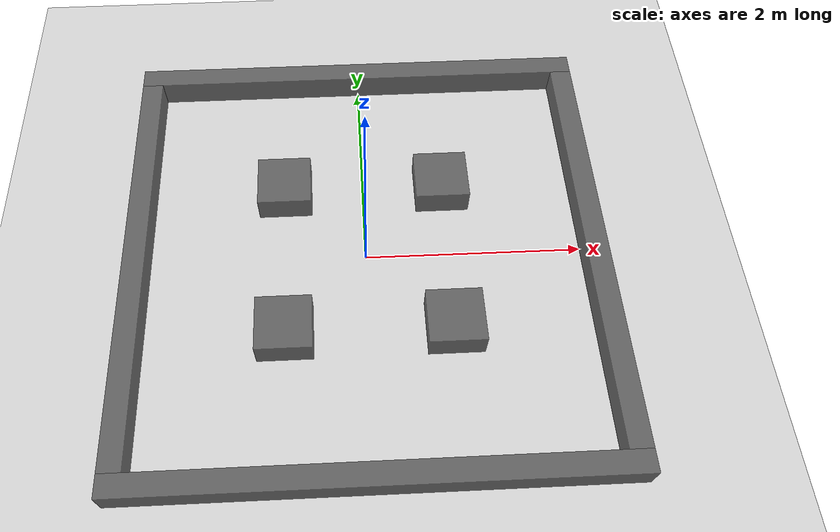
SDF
<?xml version="1.0" ?>
<sdf version="1.6">
  <world name="minimal_world">
    <include>
      <uri>model://ground_plane</uri>
    </include>
    <include>
      <uri>model://sun</uri>
    </include>

    <!-- Back Wall -->
    <model name="back_wall">
      <static>true</static>
      <pose>0 2.1 0 0 0 0</pose>
      <link name="back_wall">
        <collision name="collision">
          <geometry>
            <box>
              <size>4.4 0.2 0.5</size>
            </box>
          </geometry>
        </collision>
        <visual name="visual">
          <geometry>
            <box>
              <size>4.4 0.2 0.5</size>
            </box>
          </geometry>
          <material>
            <ambient>0.3 0.3 0.3 0.5</ambient>
            <diffuse>0.3 0.3 0.3 0.8</diffuse>
          </material>
        </visual>
      </link>
    </model>

    <!-- Front Wall -->
    <model name="front_wall">
      <static>true</static>
      <pose>0 -2.1 0 0 0 0</pose>
      <link name="front_wall">
        <collision name="collision">
          <geometry>
            <box>
              <size>4.4 0.2 0.5</size>
            </box>
          </geometry>
        </collision>
        <visual name="visual">
          <geometry>
            <box>
              <size>4.4 0.2 0.5</size>
            </box>
          </geometry>
          <material>
            <ambient>0.3 0.3 0.3 0.5</ambient>
            <diffuse>0.3 0.3 0.3 0.8</diffuse>
          </material>
        </visual>
      </link>
    </model>

    <!-- Left Wall -->
    <model name="left_wall">
      <static>true</static>
      <pose>-2.1 0 0 0 0 0</pose>
      <link name="left_wall">
        <collision name="collision">
          <geometry>
            <box>
              <size>0.2 4 0.5</size>
            </box>
          </geometry>
        </collision>
        <visual name="visual">
          <geometry>
            <box>
              <size>0.2 4 0.5</size>
            </box>
          </geometry>
          <material>
            <ambient>0.3 0.3 0.3 0.5</ambient>
            <diffuse>0.3 0.3 0.3 0.8</diffuse>
          </material>
        </visual>
      </link>
    </model>

    <!-- Right Wall -->
    <model name="right_wall">
      <static>true</static>
      <pose>2.1 0 0 0 0 0</pose>
      <link name="right_wall">
        <collision name="collision">
          <geometry>
            <box>
              <size>0.2 4 0.5</size>
            </box>
          </geometry>
        </collision>
        <visual name="visual">
          <geometry>
            <box>
              <size>0.2 4 0.5</size>
            </box>
          </geometry>
          <material>
            <ambient>0.3 0.3 0.3 0.5</ambient>
            <diffuse>0.3 0.3 0.3 0.8</diffuse>
          </material>
        </visual>
      </link>
    </model>

    <!-- Obstacles -->
    <!-- Bottom Left Block -->
    <model name="bottom_left_block">
      <static>true</static>
      <pose>-0.75 -0.75 0 0 0 0</pose>
      <link name="bottom_left_block">
        <collision name="collision">
          <geometry>
            <box>
              <size>0.5 0.5 0.5</size>
            </box>
          </geometry>
        </collision>
        <visual name="visual">
          <geometry>
            <box>
              <size>0.5 0.5 0.5</size>
            </box>
          </geometry>
          <material>
            <ambient>0.3 0.3 0.3 0.5</ambient>
            <diffuse>0.3 0.3 0.3 0.8</diffuse>
          </material>
        </visual>
      </link>
    </model>

    <!-- Bottom Right Block -->
    <model name="bottom_right_block">
      <static>true</static>
      <pose>0.75 -0.75 0 0 0 0</pose>
      <link name="bottom_right_block">
        <collision name="collision">
          <geometry>
            <box>
              <size>0.5 0.5 0.5</size>
            </box>
          </geometry>
        </collision>
        <visual name="visual">
          <geometry>
            <box>
              <size>0.5 0.5 0.5</size>
            </box>
          </geometry>
          <material>
            <ambient>0.3 0.3 0.3 0.5</ambient>
            <diffuse>0.3 0.3 0.3 0.8</diffuse>
          </material>
        </visual>
      </link>
    </model>

    <!-- Top Left Block -->
    <model name="top_left_block">
      <static>true</static>
      <pose>-0.75 0.75 0 0 0 0</pose>
      <link name="top_left_block">
        <collision name="collision">
          <geometry>
            <box>
              <size>0.5 0.5 0.5</size>
            </box>
          </geometry>
        </collision>
        <visual name="visual">
          <geometry>
            <box>
              <size>0.5 0.5 0.5</size>
            </box>
          </geometry>
          <material>
            <ambient>0.3 0.3 0.3 0.5</ambient>
            <diffuse>0.3 0.3 0.3 0.8</diffuse>
          </material>
        </visual>
      </link>
    </model>

    <!-- Top Right Block -->
    <model name="top_right_block">
      <static>true</static>
      <pose>0.75 0.75 0 0 0 0</pose>
      <link name="top_right_block">
        <collision name="collision">
          <geometry>
            <box>
              <size>0.5 0.5 0.5</size>
            </box>
          </geometry>
        </collision>
        <visual name="visual">
          <geometry>
            <box>
              <size>0.5 0.5 0.5</size>
            </box>
          </geometry>
          <material>
            <ambient>0.3 0.3 0.3 0.5</ambient>
            <diffuse>0.3 0.3 0.3 0.8</diffuse>
          </material>
        </visual>
      </link>
    </model>

    <!-- Configure the camera -->
    <gui fullscreen='0'>
      <camera name='user_camera'>
        <pose>0.0 -4.225 6 0 1 1.57</pose>
        <view_controller>orbit</view_controller>
        <projection_type>perspective</projection_type>
      </camera>
    </gui>
  </world>
</sdf>
